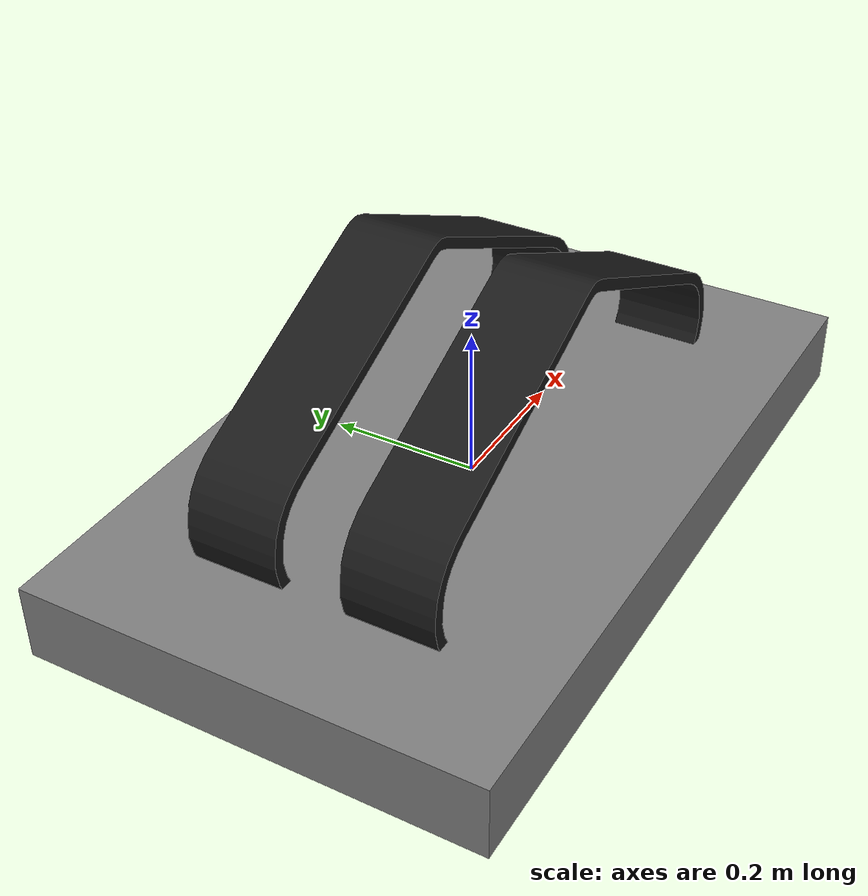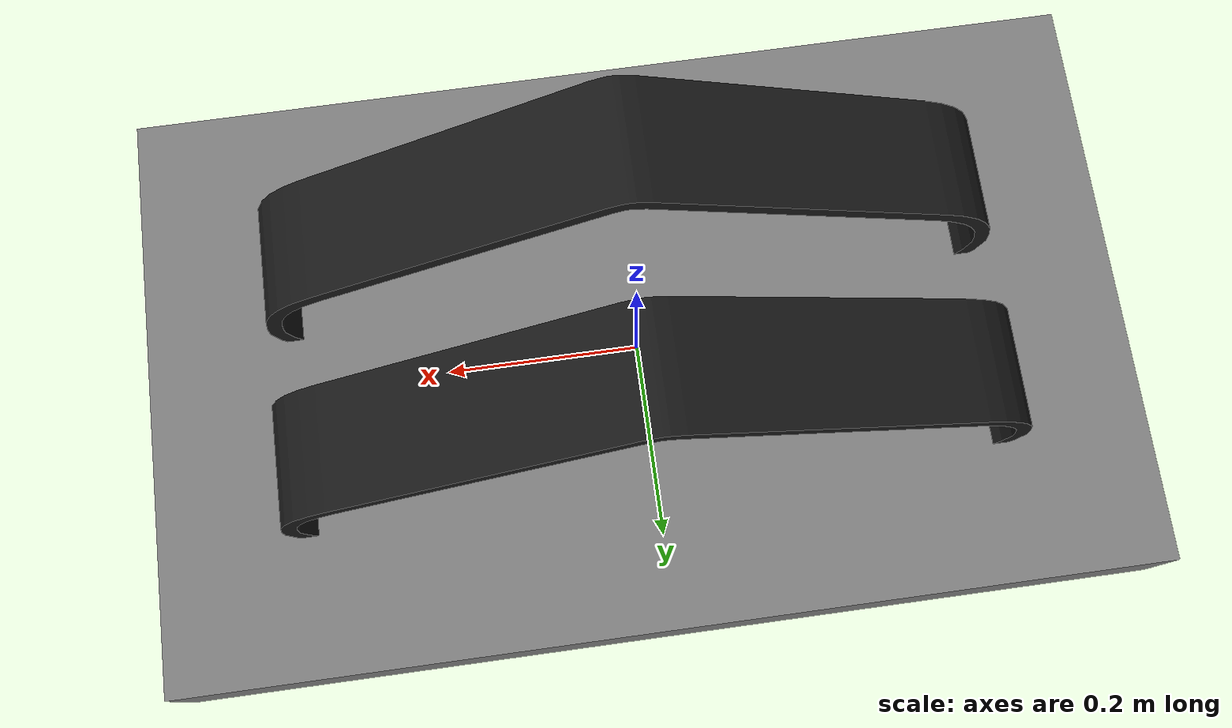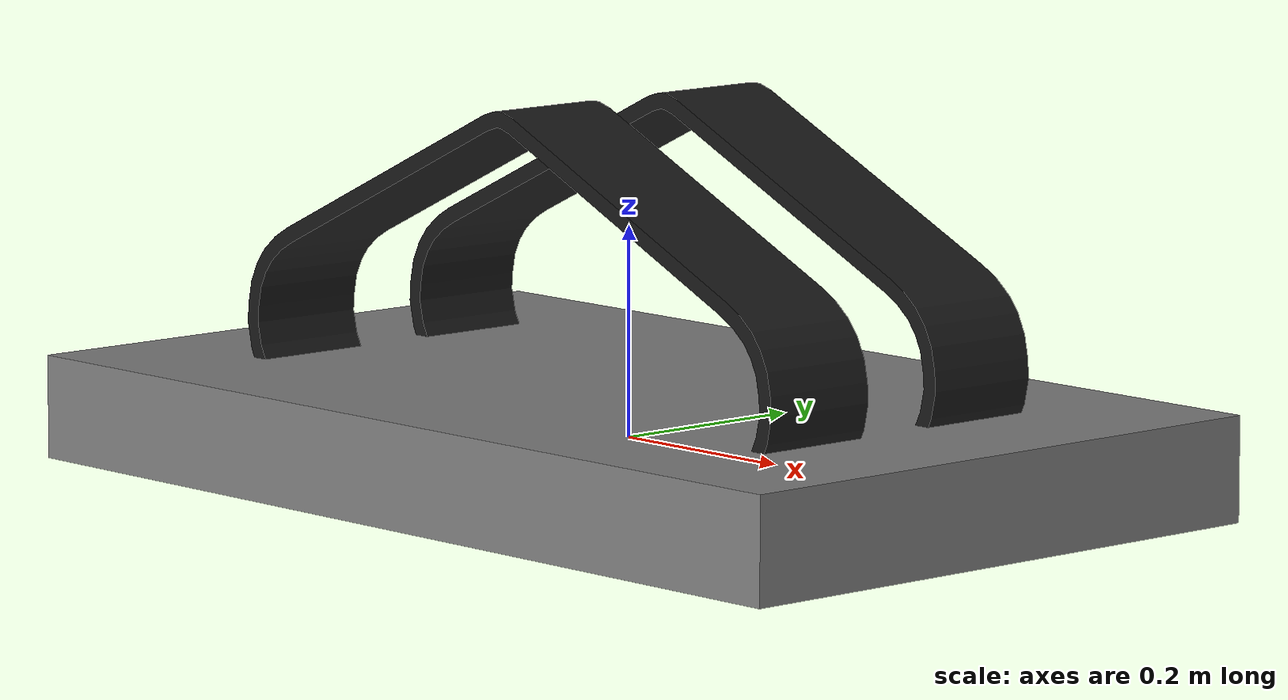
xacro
<?xml version="1.0"?>
<robot name="rove" xmlns:xacro="http://www.ros.org/wiki/xacro">
    <!-- ODrive args -->
    <xacro:arg name="use_mock_odrives" default="false"/>
    <xacro:arg name="can_channel" default="can0"/>

    <!-- Ovis args -->
    <xacro:arg name="use_mock_ovis" default="false"/>
    <xacro:arg name="with_ovis" default="false"/>

    <material name="rubber_color">
        <color rgba="0.1 0.1 0.1 1.0" />
    </material>
    <material name="frame_color">
        <color rgba="0.5 0.5 0.5 1.0" />
    </material>
    <material name="lidar_color">
        <color rgba="1 0 0 1.0" />
    </material>

    <xacro:include filename="$(find roboguard_description)/urdf/rove.base.tracks.urdf.xacro" />
    <xacro:include filename="$(find roboguard_description)/urdf/rove.base.ros2_control.urdf.xacro" />

    <link name="base_link">
        <visual>
            <origin xyz="0 0 0" rpy="0 0 0" />
            <geometry>
                <box size="1 0.6 0.1" />
            </geometry>
            <material name="frame_color" />
        </visual>
        <collision>
            <origin xyz="0 0 0" rpy="0 0 0" />
            <geometry>
                <box size="1 0.6 0.1" />
            </geometry>
        </collision>
        <inertial>
            <origin xyz="0 0 0.5" rpy="0 0 0" />
            <mass value="80" />
            <inertia ixx="1" ixy="0" ixz="0" iyy="1" iyz="0" izz="1" />
        </inertial>
    </link>

    <!-- Put these at -1 to mock the motors if working without the motors -->
    <xacro:if value="$(arg use_mock_odrives)">
        <xacro:odrive_control fr_id="-1" fl_id="-1" rl_id="-1" rr_id="-1" />
    </xacro:if>
    <xacro:unless value="$(arg use_mock_odrives)">
        <xacro:odrive_control fr_id="32" fl_id="31" rl_id="34" rr_id="33" />
    </xacro:unless>

    <xacro:if value="$(arg with_ovis)">
        <xacro:include filename="$(find ovis_description)/urdf/ovis.urdf.xacro" />
        <link name="ovis_base_link" />
        <joint name="ovis_base" type="fixed">
            <parent link="base_link" />
            <child link="ovis_base_link" />
            <origin xyz="0 -0.3 0.5" rpy="0 0 0" />
        </joint>

        <xacro:ovis base_parent="ovis_base_link" use_mock="$(arg use_mock_ovis)"/>
    </xacro:if>

</robot>

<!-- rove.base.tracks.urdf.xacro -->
<robot xmlns:xacro="http://www.ros.org/wiki/xacro">
    <!--Track xacro-->
    <xacro:macro name="track" params="suffix">
        <xacro:property name="track_j_x" value="0" />
        <xacro:property name="track_j_y" value="0.1016" />
        <xacro:property name="track_j_z" value="0.0889" />

        <xacro:if value="${(suffix == 'r')}">
            <xacro:property name="joint_origin" value="${track_j_x} ${-track_j_y} ${track_j_z}"/>
        </xacro:if>
        <xacro:if value="${(suffix == 'l')}">
            <xacro:property name="joint_origin" value="${track_j_x} ${track_j_y}  ${track_j_z}"/>
        </xacro:if>

        <joint name="track_${suffix}_j" type="fixed">
            <origin xyz="${joint_origin}" rpy="0 0 0"/>
            <parent link="base_link"/>
            <child link="track_${suffix}"/>
        </joint>

        <joint name="track_f${suffix}_j" type="fixed">
            <origin xyz="${joint_origin}" rpy="0 0 0 "/>
            <parent link="track_${suffix}"/>
            <child link="track_f${suffix}"/>
        </joint>

        <joint name="track_r${suffix}_j" type="fixed">
            <origin xyz="${joint_origin}" rpy="0 0 0 "/>
            <parent link="track_${suffix}"/>
            <child link="track_r${suffix}"/>
        </joint>

        <link name="track_${suffix}">
            <visual>
                <origin xyz="0 0 0" rpy="0 0 0"/>
                <geometry>
                    <mesh filename="https://raw.githubusercontent.com/clubcapra/rove/main/src/rove_description/meshes/track.stl"/>
                </geometry>
                <material name="rubber_color"/>
            </visual>
            <collision>
                <origin xyz="0 0 0" rpy="0 0 0"/>
                <geometry>
                    <mesh filename="https://raw.githubusercontent.com/clubcapra/rove/main/src/rove_description/meshes/track.stl"/>
                </geometry>
                <surface>
                    <friction>
                        <ode>
                            <mu>1</mu>
                            <mu2>1</mu2>
                        </ode>
                    </friction>
                    <contact>
                        <ode/>
                    </contact>
                </surface>
            </collision>
            <max_contacts>20</max_contacts>
            <!-- TODO PUT ACTUAL INERTIAL VALUES I DON'T KNOW WHAT THIS REPRESENTS NOW -->
            <inertial>
                <origin xyz="0 0 0" rpy="0 0 0"/>
                <mass value="1"/>
                <inertia ixx="0"  ixy="0"  ixz="0" iyy="0" iyz="0" izz="0" />
            </inertial>
        </link>

        <link name="track_f${suffix}">
            <inertial>
                <origin xyz="0 0 0" rpy="0 0 0"/>
                <mass value="0"/>
                <inertia ixx="100"  ixy="0"  ixz="0" iyy="0" iyz="0" izz="100"/>
            </inertial>
        </link>
        <link name="track_r${suffix}">
            <inertial>
                <origin xyz="0 0 0" rpy="0 0 0"/>
                <mass value="0"/>
                <inertia ixx="100"  ixy="0"  ixz="0" iyy="0" iyz="0" izz="100"/>
            </inertial>
        </link>

    </xacro:macro>

    <xacro:track suffix="r"/>
    <xacro:track suffix="l"/>
</robot>
